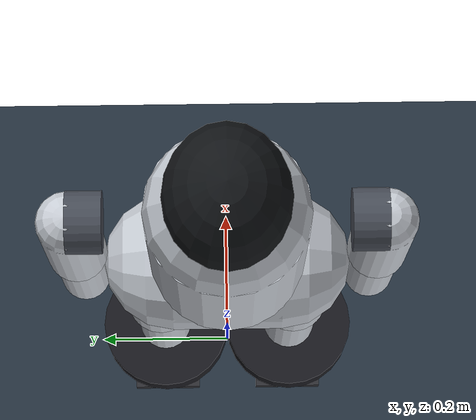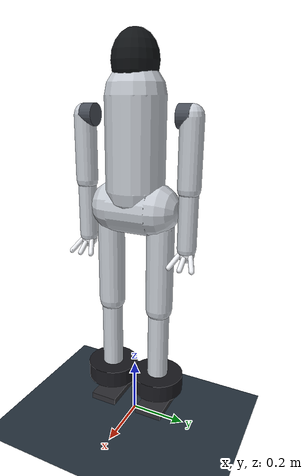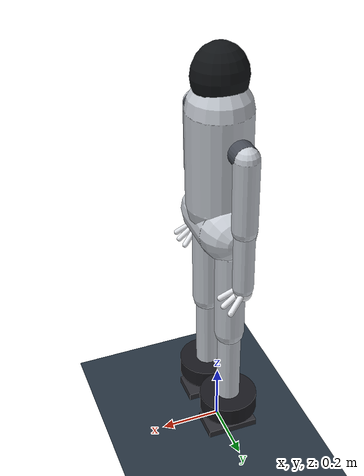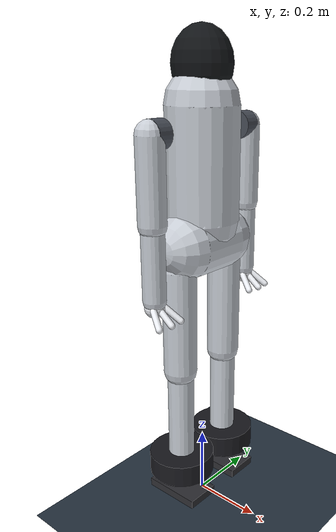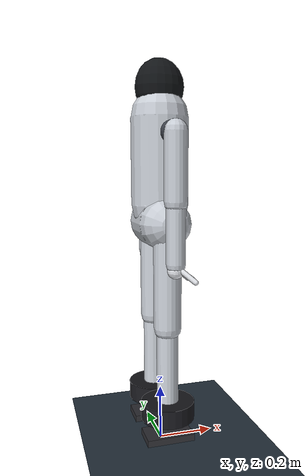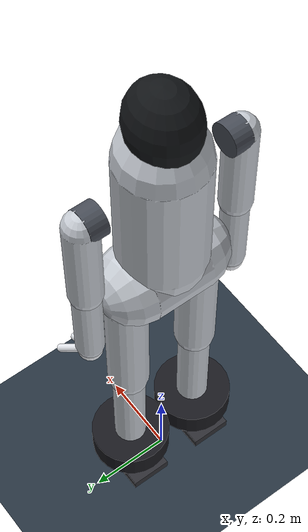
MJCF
<mujoco model="q1_wheel_foot">
  <!-- Quanta Computer Q1 Edu — transformable wheel-foot humanoid -->
  <compiler angle="radian" autolimits="true"/>
  <option timestep="0.002" gravity="0 0 -9.81" integrator="implicitfast"/>

  <visual>
    <headlight diffuse="0.7 0.7 0.7" ambient="0.25 0.25 0.25"/>
    <rgba haze="0.15 0.2 0.25 1"/>
  </visual>

  <default>
    <joint damping="1.5" armature="0.02"/>
    <geom friction="1.4 0.1 0.01" condim="3" solref="0.02 1"/>
    <motor ctrllimited="true" ctrlrange="-40 40"/>
    <position kp="120" ctrllimited="true"/>
  </default>

  <asset>
    <texture name="grid" type="2d" builtin="checker"
             rgb1="0.18 0.24 0.30" rgb2="0.12 0.16 0.20" width="512" height="512"/>
    <material name="grid" texture="grid" texrepeat="10 10" reflectance="0.05"/>
    <material name="suit" rgba="0.78 0.80 0.83 1"/>
    <material name="head" rgba="0.07 0.08 0.09 1"/>
    <material name="eye" rgba="0.15 0.9 0.95 1" emission="0.5"/>
    <material name="wheelmat" rgba="0.1 0.1 0.12 1"/>
    <material name="qdd" rgba="0.28 0.30 0.34 1"/>
    <material name="hand" rgba="0.92 0.93 0.95 1"/>
  </asset>

  <worldbody>
    <light pos="0 0 4" dir="0 0 -1" diffuse="0.85 0.85 0.85"/>
    <light pos="2.5 1.5 3" dir="-1 -0.5 -1" diffuse="0.35 0.4 0.45"/>
    <geom name="floor" type="plane" size="20 20 0.05" material="grid"/>

    <body name="pelvis" pos="0 0 0.78">
      <freejoint name="root"/>
      <inertial pos="0 0 0.05" mass="8" diaginertia="0.12 0.10 0.08"/>
      <geom type="capsule" fromto="0 -0.07 0.04 0 0.07 0.04" size="0.09" material="suit"/>
      <geom type="capsule" fromto="0 -0.06 0.04 0 0.06 0.04" size="0.08" group="3" rgba="0.5 0.5 0.5 0.2"/>

      <body name="torso" pos="0 0 0.10">
        <inertial pos="0 0 0.15" mass="6" diaginertia="0.08 0.07 0.05"/>
        <joint name="waist_yaw" type="hinge" axis="0 0 1" range="-0.5 0.5"/>
        <geom type="capsule" fromto="0 0 0 0 0 0.30" size="0.10" material="suit"/>

        <body name="head" pos="0 0 0.40">
          <inertial pos="0 0 0" mass="1.2" diaginertia="0.01 0.01 0.01"/>
          <joint name="neck" type="hinge" axis="0 1 0" range="-0.35 0.35"/>
          <geom type="ellipsoid" size="0.085 0.075 0.095" material="head"/>
          <geom name="eye_l" type="sphere" pos="0.055 0.032 0.01" size="0.016" material="eye"/>
          <geom name="eye_r" type="sphere" pos="0.055 -0.032 0.01" size="0.016" material="eye"/>
        </body>

        <!-- arms (visual + light dynamics) -->
        <body name="l_upper_arm" pos="0 0.17 0.24">
          <joint name="l_shoulder" type="hinge" axis="0 1 0" range="-2.2 1.2"/>
          <geom type="cylinder" size="0.038 0.022" quat="0.707 0.707 0 0" material="qdd"/>
          <geom type="capsule" fromto="0 0.02 0 0 0.02 -0.22" size="0.038" material="suit"/>
          <body name="l_forearm" pos="0 0.02 -0.22">
            <joint name="l_elbow" type="hinge" axis="0 1 0" range="-2.3 0"/>
            <geom type="capsule" fromto="0 0 0 0 0 -0.20" size="0.032" material="suit"/>
            <body name="l_hand" pos="0 0 -0.22">
              <geom type="sphere" size="0.028" material="hand"/>
              <geom type="capsule" fromto="0.015 0.02 0 0.055 0.04 -0.035" size="0.009" material="hand"/>
              <geom type="capsule" fromto="0.015 0 0 0.06 0 -0.035" size="0.009" material="hand"/>
              <geom type="capsule" fromto="0.015 -0.02 0 0.055 -0.04 -0.035" size="0.009" material="hand"/>
            </body>
          </body>
        </body>

        <body name="r_upper_arm" pos="0 -0.17 0.24">
          <joint name="r_shoulder" type="hinge" axis="0 1 0" range="-2.2 1.2"/>
          <geom type="cylinder" size="0.038 0.022" quat="0.707 0.707 0 0" material="qdd"/>
          <geom type="capsule" fromto="0 -0.02 0 0 -0.02 -0.22" size="0.038" material="suit"/>
          <body name="r_forearm" pos="0 -0.02 -0.22">
            <joint name="r_elbow" type="hinge" axis="0 1 0" range="-2.3 0"/>
            <geom type="capsule" fromto="0 0 0 0 0 -0.20" size="0.032" material="suit"/>
            <body name="r_hand" pos="0 0 -0.22">
              <geom type="sphere" size="0.028" material="hand"/>
              <geom type="capsule" fromto="0.015 0.02 0 0.055 0.04 -0.035" size="0.009" material="hand"/>
              <geom type="capsule" fromto="0.015 0 0 0.06 0 -0.035" size="0.009" material="hand"/>
              <geom type="capsule" fromto="0.015 -0.02 0 0.055 -0.04 -0.035" size="0.009" material="hand"/>
            </body>
          </body>
        </body>
      </body>

      <!-- LEFT LEG -->
      <body name="l_thigh" pos="0 0.095 -0.02">
        <inertial pos="0 0 -0.12" mass="3.5" diaginertia="0.03 0.03 0.01"/>
        <joint name="l_hip" type="hinge" axis="0 1 0" range="-1.3 1.3"/>
        <geom type="cylinder" size="0.04 0.025" quat="0.707 0.707 0 0" material="qdd"/>
        <geom type="capsule" fromto="0 0 0 0 0 -0.30" size="0.048" material="suit"/>
        <body name="l_shank" pos="0 0 -0.30">
          <inertial pos="0 0 -0.12" mass="2.5" diaginertia="0.02 0.02 0.008"/>
          <joint name="l_knee" type="hinge" axis="0 1 0" range="0 2.2"/>
          <geom type="cylinder" size="0.036 0.022" quat="0.707 0.707 0 0" material="qdd"/>
          <geom type="capsule" fromto="0 0 0 0 0 -0.30" size="0.038" material="suit"/>
          <body name="l_ankle" pos="0 0 -0.30">
            <inertial pos="0 0 0" mass="0.8" diaginertia="0.004 0.004 0.004"/>
            <joint name="l_ankle" type="hinge" axis="0 1 0" range="-1.0 0.8"/>
            <!-- 0 = wheel mode (cylinder axis along Y); pi/2 = biped (wheel tilted / sole down) -->
            <joint name="l_transform" type="hinge" axis="1 0 0" range="0 1.5708" damping="8"/>
            <geom type="cylinder" size="0.032 0.018" quat="0.707 0 0.707 0" material="qdd"/>
            <body name="l_wheel" pos="0 0 0">
              <inertial pos="0 0 0" mass="1.0" diaginertia="0.004 0.006 0.004"/>
              <joint name="l_wheel" type="hinge" axis="0 1 0" damping="0.15"/>
              <geom name="l_wheel_g" type="cylinder" size="0.095 0.032" material="wheelmat"
                    friction="1.8 0.1 0.005"/>
              <geom name="l_sole" type="box" size="0.085 0.05 0.012" pos="0 0 -0.10"
                    rgba="0.18 0.18 0.2 1" friction="1.6 0.1 0.005"/>
            </body>
          </body>
        </body>
      </body>

      <!-- RIGHT LEG -->
      <body name="r_thigh" pos="0 -0.095 -0.02">
        <inertial pos="0 0 -0.12" mass="3.5" diaginertia="0.03 0.03 0.01"/>
        <joint name="r_hip" type="hinge" axis="0 1 0" range="-1.3 1.3"/>
        <geom type="cylinder" size="0.04 0.025" quat="0.707 0.707 0 0" material="qdd"/>
        <geom type="capsule" fromto="0 0 0 0 0 -0.30" size="0.048" material="suit"/>
        <body name="r_shank" pos="0 0 -0.30">
          <inertial pos="0 0 -0.12" mass="2.5" diaginertia="0.02 0.02 0.008"/>
          <joint name="r_knee" type="hinge" axis="0 1 0" range="0 2.2"/>
          <geom type="cylinder" size="0.036 0.022" quat="0.707 0.707 0 0" material="qdd"/>
          <geom type="capsule" fromto="0 0 0 0 0 -0.30" size="0.038" material="suit"/>
          <body name="r_ankle" pos="0 0 -0.30">
            <inertial pos="0 0 0" mass="0.8" diaginertia="0.004 0.004 0.004"/>
            <joint name="r_ankle" type="hinge" axis="0 1 0" range="-1.0 0.8"/>
            <joint name="r_transform" type="hinge" axis="1 0 0" range="0 1.5708" damping="8"/>
            <geom type="cylinder" size="0.032 0.018" quat="0.707 0 0.707 0" material="qdd"/>
            <body name="r_wheel" pos="0 0 0">
              <inertial pos="0 0 0" mass="1.0" diaginertia="0.004 0.006 0.004"/>
              <joint name="r_wheel" type="hinge" axis="0 1 0" damping="0.15"/>
              <geom name="r_wheel_g" type="cylinder" size="0.095 0.032" material="wheelmat"
                    friction="1.8 0.1 0.005"/>
              <geom name="r_sole" type="box" size="0.085 0.05 0.012" pos="0 0 -0.10"
                    rgba="0.18 0.18 0.2 1" friction="1.6 0.1 0.005"/>
            </body>
          </body>
        </body>
      </body>
    </body>
  </worldbody>

  <actuator>
    <motor name="l_drive" joint="l_wheel" gear="10"/>
    <motor name="r_drive" joint="r_wheel" gear="10"/>
    <position name="l_tf" joint="l_transform" kp="200" ctrlrange="0 1.5708"/>
    <position name="r_tf" joint="r_transform" kp="200" ctrlrange="0 1.5708"/>
    <position name="l_hip_act" joint="l_hip" kp="150" ctrlrange="-1.3 1.3"/>
    <position name="r_hip_act" joint="r_hip" kp="150" ctrlrange="-1.3 1.3"/>
    <position name="l_knee_act" joint="l_knee" kp="200" ctrlrange="0 2.2"/>
    <position name="r_knee_act" joint="r_knee" kp="200" ctrlrange="0 2.2"/>
    <position name="l_ankle_act" joint="l_ankle" kp="80" ctrlrange="-1.0 0.8"/>
    <position name="r_ankle_act" joint="r_ankle" kp="80" ctrlrange="-1.0 0.8"/>
  </actuator>
</mujoco>
